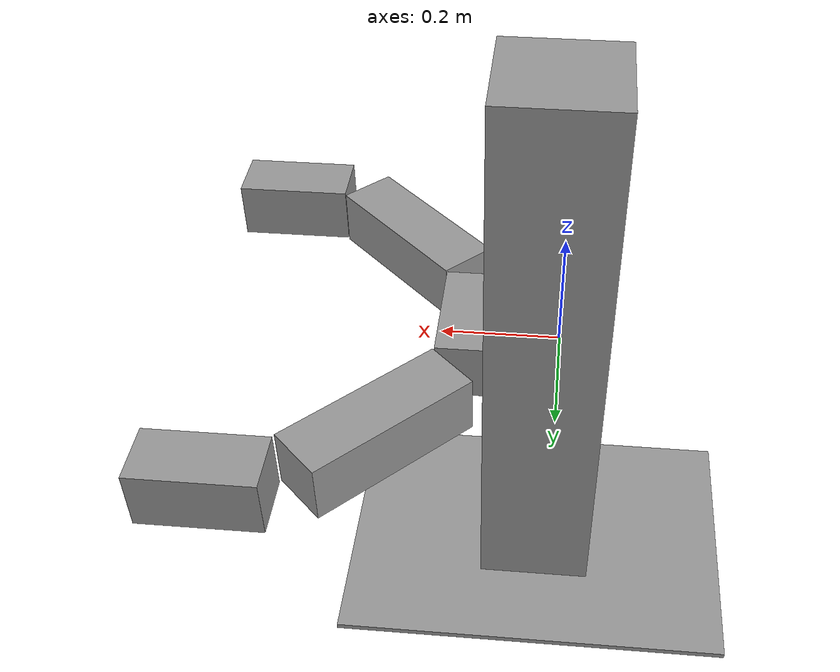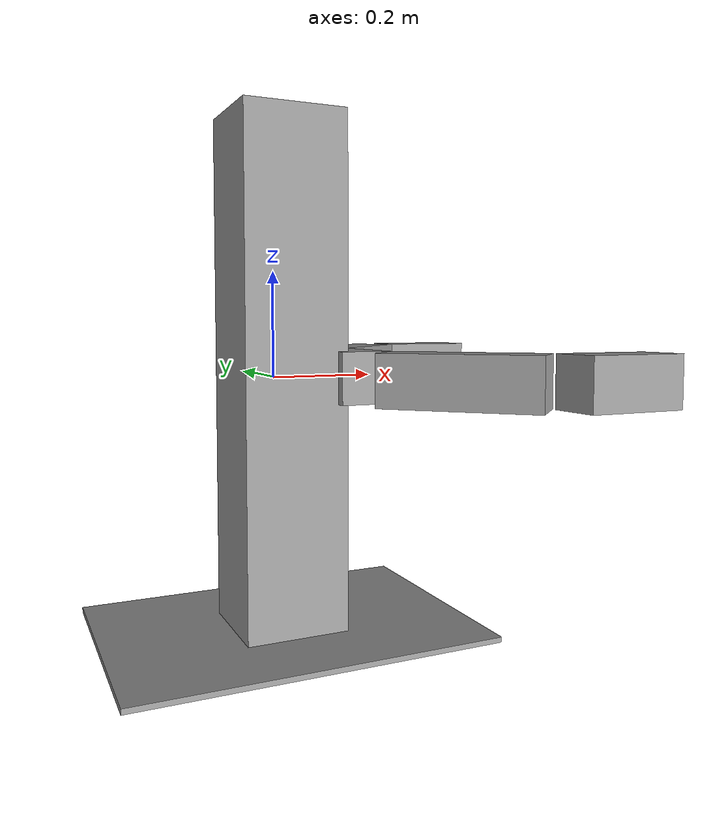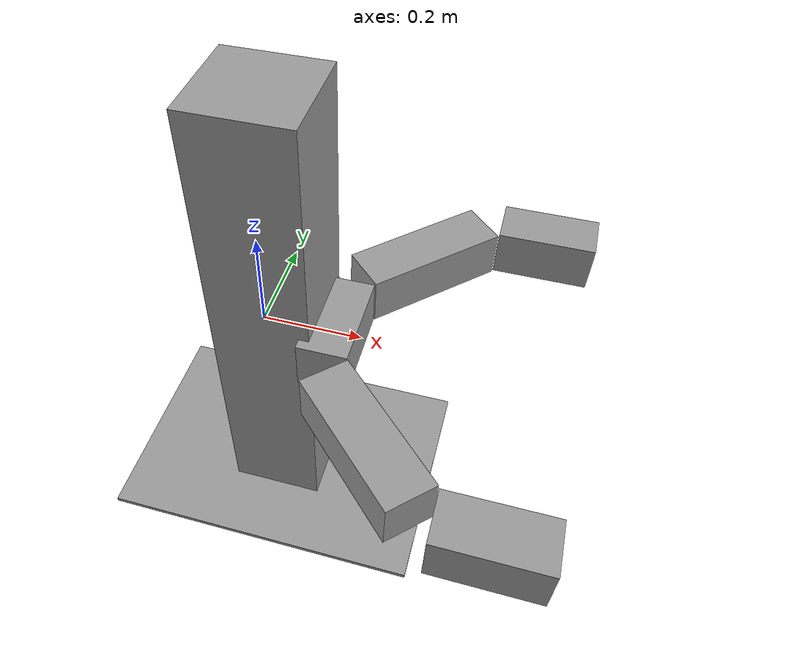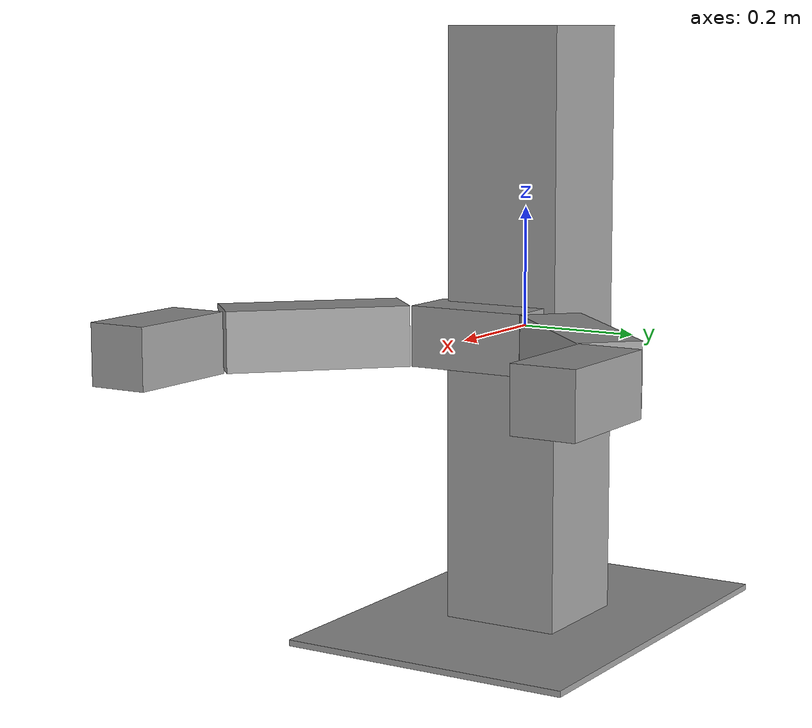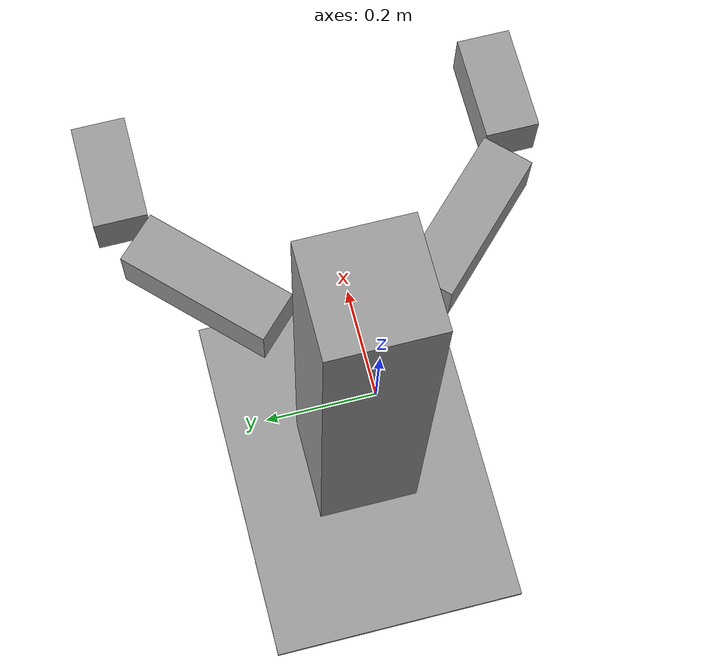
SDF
<?xml version='1.0'?>
<sdf version='1.7'>
  <model name='gripper_base'>
    <link name='riser'>
      <pose>0.02 0.02 0 -2e-06 -1.6e-05 -0.000932</pose>
      <inertial>
        <mass>10</mass>
        <inertia>
          <ixx>0.166667</ixx>
          <ixy>0</ixy>
          <ixz>0</ixz>
          <iyy>0.166667</iyy>
          <iyz>0</iyz>
          <izz>0.166667</izz>
        </inertia>
        <pose>0 0 0 0 -0 0</pose>
      </inertial>
      <self_collide>0</self_collide>
      <kinematic>0</kinematic>
      <enable_wind>0</enable_wind>
      <gravity>1</gravity>
      <visual name='visual'>
        <pose>0 0 0 0 -0 0</pose>
        <geometry>
          <box>
            <size>0.2 0.2 1</size>
          </box>
        </geometry>
        <material>
          <lighting>1</lighting>
          <script>
            <uri>file://media/materials/scripts/gazebo.material</uri>
            <name>Gazebo/Grey</name>
          </script>
          <ambient>0.3 0.3 0.3 1</ambient>
          <diffuse>0.7 0.7 0.7 1</diffuse>
          <specular>0.01 0.01 0.01 1</specular>
          <emissive>0 0 0 1</emissive>
          <shader type='vertex'>
            <normal_map>__default__</normal_map>
          </shader>
        </material>
        <transparency>0</transparency>
        <cast_shadows>1</cast_shadows>
      </visual>
      <collision name='collision'>
        <laser_retro>0</laser_retro>
        <max_contacts>10</max_contacts>
        <pose>0 0 0 0 -0 0</pose>
        <geometry>
          <box>
            <size>0.2 0.2 1</size>
          </box>
        </geometry>
        <surface>
          <friction>
            <ode>
              <mu>1</mu>
              <mu2>1</mu2>
              <fdir1>0 0 0</fdir1>
              <slip1>0</slip1>
              <slip2>0</slip2>
            </ode>
            <torsional>
              <coefficient>1</coefficient>
              <patch_radius>0</patch_radius>
              <surface_radius>0</surface_radius>
              <use_patch_radius>1</use_patch_radius>
              <ode>
                <slip>0</slip>
              </ode>
            </torsional>
          </friction>
          <bounce>
            <restitution_coefficient>0</restitution_coefficient>
            <threshold>1e+06</threshold>
          </bounce>
          <contact>
            <collide_without_contact>0</collide_without_contact>
            <collide_without_contact_bitmask>1</collide_without_contact_bitmask>
            <collide_bitmask>1</collide_bitmask>
            <ode>
              <soft_cfm>0</soft_cfm>
              <soft_erp>0.2</soft_erp>
              <kp>1e+13</kp>
              <kd>1</kd>
              <max_vel>0.01</max_vel>
              <min_depth>0</min_depth>
            </ode>
            <bullet>
              <split_impulse>1</split_impulse>
              <split_impulse_penetration_threshold>-0.01</split_impulse_penetration_threshold>
              <soft_cfm>0</soft_cfm>
              <soft_erp>0.2</soft_erp>
              <kp>1e+13</kp>
              <kd>1</kd>
            </bullet>
          </contact>
        </surface>
      </collision>
    </link>
    <link name='left_finger'>
      <pose>0.27277 0.243512 -0 0 0 -0.7854</pose>
      <inertial>
        <mass>0.1</mass>
        <inertia>
          <ixx>0.166667</ixx>
          <ixy>0</ixy>
          <ixz>0</ixz>
          <iyy>0.166667</iyy>
          <iyz>0</iyz>
          <izz>0.166667</izz>
        </inertia>
        <pose>0 0 0 0 -0 0</pose>
      </inertial>
      <self_collide>0</self_collide>
      <kinematic>0</kinematic>
      <enable_wind>0</enable_wind>
      <visual name='visual'>
        <pose>0 0 0 0 -0 0</pose>
        <geometry>
          <box>
            <size>0.1 0.3 0.1</size>
          </box>
        </geometry>
        <material>
          <lighting>1</lighting>
          <script>
            <uri>file://media/materials/scripts/gazebo.material</uri>
            <name>Gazebo/Grey</name>
          </script>
          <ambient>0.3 0.3 0.3 1</ambient>
          <diffuse>0.7 0.7 0.7 1</diffuse>
          <specular>0.01 0.01 0.01 1</specular>
          <emissive>0 0 0 1</emissive>
          <shader type='vertex'>
            <normal_map>__default__</normal_map>
          </shader>
        </material>
        <transparency>0</transparency>
        <cast_shadows>1</cast_shadows>
      </visual>
      <collision name='collision'>
        <laser_retro>0</laser_retro>
        <max_contacts>10</max_contacts>
        <pose>0 0 0 0 -0 0</pose>
        <geometry>
          <box>
            <size>0.1 0.3 0.1</size>
          </box>
        </geometry>
        <surface>
          <friction>
            <ode>
              <mu>1</mu>
              <mu2>1</mu2>
              <fdir1>0 0 0</fdir1>
              <slip1>0</slip1>
              <slip2>0</slip2>
            </ode>
            <torsional>
              <coefficient>1</coefficient>
              <patch_radius>0</patch_radius>
              <surface_radius>0</surface_radius>
              <use_patch_radius>1</use_patch_radius>
              <ode>
                <slip>0</slip>
              </ode>
            </torsional>
          </friction>
          <bounce>
            <restitution_coefficient>0</restitution_coefficient>
            <threshold>1e+06</threshold>
          </bounce>
          <contact>
            <collide_without_contact>0</collide_without_contact>
            <collide_without_contact_bitmask>1</collide_without_contact_bitmask>
            <collide_bitmask>1</collide_bitmask>
            <ode>
              <soft_cfm>0</soft_cfm>
              <soft_erp>0.2</soft_erp>
              <kp>1e+13</kp>
              <kd>1</kd>
              <max_vel>0.01</max_vel>
              <min_depth>0</min_depth>
            </ode>
            <bullet>
              <split_impulse>1</split_impulse>
              <split_impulse_penetration_threshold>-0.01</split_impulse_penetration_threshold>
              <soft_cfm>0</soft_cfm>
              <soft_erp>0.2</soft_erp>
              <kp>1e+13</kp>
              <kd>1</kd>
            </bullet>
          </contact>
        </surface>
      </collision>
    </link>
    <link name='left_fingertip'>
      <pose>0.516026 0.369208 0 0 0 -1.5707</pose>
      <inertial>
        <mass>0.1</mass>
        <inertia>
          <ixx>0.166667</ixx>
          <ixy>0</ixy>
          <ixz>0</ixz>
          <iyy>0.166667</iyy>
          <iyz>0</iyz>
          <izz>0.166667</izz>
        </inertia>
        <pose>0 0 0 0 -0 0</pose>
      </inertial>
      <self_collide>0</self_collide>
      <kinematic>0</kinematic>
      <enable_wind>0</enable_wind>
      <visual name='visual'>
        <pose>0 0 0 0 -0 0</pose>
        <geometry>
          <box>
            <size>0.1 0.2 0.1</size>
          </box>
        </geometry>
        <material>
          <lighting>1</lighting>
          <script>
            <uri>file://media/materials/scripts/gazebo.material</uri>
            <name>Gazebo/Grey</name>
          </script>
          <ambient>0.3 0.3 0.3 1</ambient>
          <diffuse>0.7 0.7 0.7 1</diffuse>
          <specular>0.01 0.01 0.01 1</specular>
          <emissive>0 0 0 1</emissive>
          <shader type='vertex'>
            <normal_map>__default__</normal_map>
          </shader>
        </material>
        <transparency>0</transparency>
        <cast_shadows>1</cast_shadows>
      </visual>
      <collision name='collision'>
        <laser_retro>0</laser_retro>
        <max_contacts>10</max_contacts>
        <pose>0 0 0 0 -0 0</pose>
        <geometry>
          <box>
            <size>0.1 0.2 0.1</size>
          </box>
        </geometry>
        <surface>
          <friction>
            <ode>
              <mu>1</mu>
              <mu2>1</mu2>
              <fdir1>0 0 0</fdir1>
              <slip1>0</slip1>
              <slip2>0</slip2>
            </ode>
            <torsional>
              <coefficient>1</coefficient>
              <patch_radius>0</patch_radius>
              <surface_radius>0</surface_radius>
              <use_patch_radius>1</use_patch_radius>
              <ode>
                <slip>0</slip>
              </ode>
            </torsional>
          </friction>
          <bounce>
            <restitution_coefficient>0</restitution_coefficient>
            <threshold>1e+06</threshold>
          </bounce>
          <contact>
            <collide_without_contact>0</collide_without_contact>
            <collide_without_contact_bitmask>1</collide_without_contact_bitmask>
            <collide_bitmask>1</collide_bitmask>
            <ode>
              <soft_cfm>0</soft_cfm>
              <soft_erp>0.2</soft_erp>
              <kp>1e+13</kp>
              <kd>1</kd>
              <max_vel>0.01</max_vel>
              <min_depth>0</min_depth>
            </ode>
            <bullet>
              <split_impulse>1</split_impulse>
              <split_impulse_penetration_threshold>-0.01</split_impulse_penetration_threshold>
              <soft_cfm>0</soft_cfm>
              <soft_erp>0.2</soft_erp>
              <kp>1e+13</kp>
              <kd>1</kd>
            </bullet>
          </contact>
        </surface>
      </collision>
    </link>
    <link name='base'>
      <inertial>
        <mass>19</mass>
        <inertia>
          <ixx>0.395992</ixx>
          <ixy>0</ixy>
          <ixz>0</ixz>
          <iyy>0.395992</iyy>
          <iyz>0</iyz>
          <izz>0.791667</izz>
        </inertia>
        <pose>0 0 0 0 -0 0</pose>
      </inertial>
      <pose>0.020008 0.019999 -0.493 -0 -0 -0.000932</pose>
      <gravity>1</gravity>
      <self_collide>0</self_collide>
      <kinematic>0</kinematic>
      <enable_wind>0</enable_wind>
      <visual name='visual'>
        <pose>0 0 0 0 -0 0</pose>
        <geometry>
          <box>
            <size>0.7 0.5 0.01</size>
          </box>
        </geometry>
        <material>
          <lighting>1</lighting>
          <script>
            <uri>file://media/materials/scripts/gazebo.material</uri>
            <name>Gazebo/Grey</name>
          </script>
          <shader type='pixel'>
            <normal_map>__default__</normal_map>
          </shader>
          <ambient>0.3 0.3 0.3 1</ambient>
          <diffuse>0.7 0.7 0.7 1</diffuse>
          <specular>0.01 0.01 0.01 1</specular>
          <emissive>0 0 0 1</emissive>
        </material>
        <transparency>0</transparency>
        <cast_shadows>1</cast_shadows>
      </visual>
      <collision name='collision'>
        <laser_retro>0</laser_retro>
        <max_contacts>10</max_contacts>
        <pose>0 0 0 0 -0 0</pose>
        <geometry>
          <box>
            <size>0.7 0.5 0.01</size>
          </box>
        </geometry>
        <surface>
          <friction>
            <ode>
              <mu>1</mu>
              <mu2>1</mu2>
              <fdir1>0 0 0</fdir1>
              <slip1>0</slip1>
              <slip2>0</slip2>
            </ode>
            <torsional>
              <coefficient>1</coefficient>
              <patch_radius>0</patch_radius>
              <surface_radius>0</surface_radius>
              <use_patch_radius>1</use_patch_radius>
              <ode>
                <slip>0</slip>
              </ode>
            </torsional>
          </friction>
          <bounce>
            <restitution_coefficient>0</restitution_coefficient>
            <threshold>1e+06</threshold>
          </bounce>
          <contact>
            <collide_without_contact>0</collide_without_contact>
            <collide_without_contact_bitmask>1</collide_without_contact_bitmask>
            <collide_bitmask>1</collide_bitmask>
            <ode>
              <soft_cfm>0</soft_cfm>
              <soft_erp>0.2</soft_erp>
              <kp>1e+13</kp>
              <kd>1</kd>
              <max_vel>0.01</max_vel>
              <min_depth>0</min_depth>
            </ode>
            <bullet>
              <split_impulse>1</split_impulse>
              <split_impulse_penetration_threshold>-0.01</split_impulse_penetration_threshold>
              <soft_cfm>0</soft_cfm>
              <soft_erp>0.2</soft_erp>
              <kp>1e+13</kp>
              <kd>1</kd>
            </bullet>
          </contact>
        </surface>
      </collision>
    </link>
    <link name='palm'>
      <pose>0.15 -0 -0 0 -0 0</pose>
      <inertial>
        <mass>0.5</mass>
        <inertia>
          <ixx>0.166667</ixx>
          <ixy>0</ixy>
          <ixz>0</ixz>
          <iyy>0.166667</iyy>
          <iyz>0</iyz>
          <izz>0.166667</izz>
        </inertia>
        <pose>0 0 0 0 -0 0</pose>
      </inertial>
      <self_collide>0</self_collide>
      <kinematic>0</kinematic>
      <enable_wind>0</enable_wind>
      <visual name='visual'>
        <pose>0 0 0 0 -0 0</pose>
        <geometry>
          <box>
            <size>0.1 0.2 0.1</size>
          </box>
        </geometry>
        <material>
          <lighting>1</lighting>
          <script>
            <uri>file://media/materials/scripts/gazebo.material</uri>
            <name>Gazebo/Grey</name>
          </script>
          <ambient>0.3 0.3 0.3 1</ambient>
          <diffuse>0.7 0.7 0.7 1</diffuse>
          <specular>0.01 0.01 0.01 1</specular>
          <emissive>0 0 0 1</emissive>
          <shader type='vertex'>
            <normal_map>__default__</normal_map>
          </shader>
        </material>
        <transparency>0</transparency>
        <cast_shadows>1</cast_shadows>
      </visual>
      <collision name='collision'>
        <laser_retro>0</laser_retro>
        <max_contacts>10</max_contacts>
        <pose>0 0 0 0 -0 0</pose>
        <geometry>
          <box>
            <size>0.1 0.2 0.1</size>
          </box>
        </geometry>
        <surface>
          <friction>
            <ode>
              <mu>1</mu>
              <mu2>1</mu2>
              <fdir1>0 0 0</fdir1>
              <slip1>0</slip1>
              <slip2>0</slip2>
            </ode>
            <torsional>
              <coefficient>1</coefficient>
              <patch_radius>0</patch_radius>
              <surface_radius>0</surface_radius>
              <use_patch_radius>1</use_patch_radius>
              <ode>
                <slip>0</slip>
              </ode>
            </torsional>
          </friction>
          <bounce>
            <restitution_coefficient>0</restitution_coefficient>
            <threshold>1e+06</threshold>
          </bounce>
          <contact>
            <collide_without_contact>0</collide_without_contact>
            <collide_without_contact_bitmask>1</collide_without_contact_bitmask>
            <collide_bitmask>1</collide_bitmask>
            <ode>
              <soft_cfm>0</soft_cfm>
              <soft_erp>0.2</soft_erp>
              <kp>1e+13</kp>
              <kd>1</kd>
              <max_vel>0.01</max_vel>
              <min_depth>0</min_depth>
            </ode>
            <bullet>
              <split_impulse>1</split_impulse>
              <split_impulse_penetration_threshold>-0.01</split_impulse_penetration_threshold>
              <soft_cfm>0</soft_cfm>
              <soft_erp>0.2</soft_erp>
              <kp>1e+13</kp>
              <kd>1</kd>
            </bullet>
          </contact>
        </surface>
      </collision>
    </link>
    <link name='right_finger'>
      <pose>0.27277 -0.243512 0 0 -0 0.7854</pose>
      <inertial>
        <mass>0.1</mass>
        <inertia>
          <ixx>0.166667</ixx>
          <ixy>0</ixy>
          <ixz>0</ixz>
          <iyy>0.166667</iyy>
          <iyz>0</iyz>
          <izz>0.166667</izz>
        </inertia>
        <pose>0 0 0 0 -0 0</pose>
      </inertial>
      <self_collide>0</self_collide>
      <kinematic>0</kinematic>
      <enable_wind>0</enable_wind>
      <visual name='visual'>
        <pose>0 0 0 0 -0 0</pose>
        <geometry>
          <box>
            <size>0.1 0.3 0.1</size>
          </box>
        </geometry>
        <material>
          <lighting>1</lighting>
          <script>
            <uri>file://media/materials/scripts/gazebo.material</uri>
            <name>Gazebo/Grey</name>
          </script>
          <ambient>0.3 0.3 0.3 1</ambient>
          <diffuse>0.7 0.7 0.7 1</diffuse>
          <specular>0.01 0.01 0.01 1</specular>
          <emissive>0 0 0 1</emissive>
          <shader type='vertex'>
            <normal_map>__default__</normal_map>
          </shader>
        </material>
        <transparency>0</transparency>
        <cast_shadows>1</cast_shadows>
      </visual>
      <collision name='collision'>
        <laser_retro>0</laser_retro>
        <max_contacts>10</max_contacts>
        <pose>0 0 0 0 -0 0</pose>
        <geometry>
          <box>
            <size>0.1 0.3 0.1</size>
          </box>
        </geometry>
        <surface>
          <friction>
            <ode>
              <mu>1</mu>
              <mu2>1</mu2>
              <fdir1>0 0 0</fdir1>
              <slip1>0</slip1>
              <slip2>0</slip2>
            </ode>
            <torsional>
              <coefficient>1</coefficient>
              <patch_radius>0</patch_radius>
              <surface_radius>0</surface_radius>
              <use_patch_radius>1</use_patch_radius>
              <ode>
                <slip>0</slip>
              </ode>
            </torsional>
          </friction>
          <bounce>
            <restitution_coefficient>0</restitution_coefficient>
            <threshold>1e+06</threshold>
          </bounce>
          <contact>
            <collide_without_contact>0</collide_without_contact>
            <collide_without_contact_bitmask>1</collide_without_contact_bitmask>
            <collide_bitmask>1</collide_bitmask>
            <ode>
              <soft_cfm>0</soft_cfm>
              <soft_erp>0.2</soft_erp>
              <kp>1e+13</kp>
              <kd>1</kd>
              <max_vel>0.01</max_vel>
              <min_depth>0</min_depth>
            </ode>
            <bullet>
              <split_impulse>1</split_impulse>
              <split_impulse_penetration_threshold>-0.01</split_impulse_penetration_threshold>
              <soft_cfm>0</soft_cfm>
              <soft_erp>0.2</soft_erp>
              <kp>1e+13</kp>
              <kd>1</kd>
            </bullet>
          </contact>
        </surface>
      </collision>
    </link>
    <link name='right_fingertip'>
      <pose>0.516026 -0.369208 -0 0 -0 1.5707</pose>
      <inertial>
        <mass>0.1</mass>
        <inertia>
          <ixx>0.166667</ixx>
          <ixy>0</ixy>
          <ixz>0</ixz>
          <iyy>0.166667</iyy>
          <iyz>0</iyz>
          <izz>0.166667</izz>
        </inertia>
        <pose>0 0 0 0 -0 0</pose>
      </inertial>
      <self_collide>0</self_collide>
      <kinematic>0</kinematic>
      <enable_wind>0</enable_wind>
      <visual name='visual'>
        <pose>0 0 0 0 -0 0</pose>
        <geometry>
          <box>
            <size>0.1 0.2 0.1</size>
          </box>
        </geometry>
        <material>
          <lighting>1</lighting>
          <script>
            <uri>file://media/materials/scripts/gazebo.material</uri>
            <name>Gazebo/Grey</name>
          </script>
          <ambient>0.3 0.3 0.3 1</ambient>
          <diffuse>0.7 0.7 0.7 1</diffuse>
          <specular>0.01 0.01 0.01 1</specular>
          <emissive>0 0 0 1</emissive>
          <shader type='vertex'>
            <normal_map>__default__</normal_map>
          </shader>
        </material>
        <transparency>0</transparency>
        <cast_shadows>1</cast_shadows>
      </visual>
      <collision name='collision'>
        <laser_retro>0</laser_retro>
        <max_contacts>10</max_contacts>
        <pose>0 0 0 0 -0 0</pose>
        <geometry>
          <box>
            <size>0.1 0.2 0.1</size>
          </box>
        </geometry>
        <surface>
          <friction>
            <ode>
              <mu>1</mu>
              <mu2>1</mu2>
              <fdir1>0 0 0</fdir1>
              <slip1>0</slip1>
              <slip2>0</slip2>
            </ode>
            <torsional>
              <coefficient>1</coefficient>
              <patch_radius>0</patch_radius>
              <surface_radius>0</surface_radius>
              <use_patch_radius>1</use_patch_radius>
              <ode>
                <slip>0</slip>
              </ode>
            </torsional>
          </friction>
          <bounce>
            <restitution_coefficient>0</restitution_coefficient>
            <threshold>1e+06</threshold>
          </bounce>
          <contact>
            <collide_without_contact>0</collide_without_contact>
            <collide_without_contact_bitmask>1</collide_without_contact_bitmask>
            <collide_bitmask>1</collide_bitmask>
            <ode>
              <soft_cfm>0</soft_cfm>
              <soft_erp>0.2</soft_erp>
              <kp>1e+13</kp>
              <kd>1</kd>
              <max_vel>0.01</max_vel>
              <min_depth>0</min_depth>
            </ode>
            <bullet>
              <split_impulse>1</split_impulse>
              <split_impulse_penetration_threshold>-0.01</split_impulse_penetration_threshold>
              <soft_cfm>0</soft_cfm>
              <soft_erp>0.2</soft_erp>
              <kp>1e+13</kp>
              <kd>1</kd>
            </bullet>
          </contact>
        </surface>
      </collision>
    </link>
    <joint name='left_finger_joint' type='revolute'>
      <parent>palm</parent>
      <child>left_finger</child>
      <pose>0.05 -0.15 0 0 -0 0</pose>
      <axis>
        <xyz>0 0 -1</xyz>
        <limit>
          <lower>-0.4</lower>
          <upper>0.4</upper>
          <effort>-1</effort>
          <velocity>-1</velocity>
        </limit>
        <dynamics>
          <spring_reference>0</spring_reference>
          <spring_stiffness>0</spring_stiffness>
          <damping>0</damping>
          <friction>0</friction>
        </dynamics>
      </axis>
      <physics>
        <ode>
          <limit>
            <cfm>0</cfm>
            <erp>0.2</erp>
          </limit>
          <suspension>
            <cfm>0</cfm>
            <erp>0.2</erp>
          </suspension>
        </ode>
      </physics>
    </joint>
    <joint name='left_tip_joint' type='revolute'>
      <parent>left_finger</parent>
      <child>left_fingertip</child>
      <pose>0.05 -0.1 0 0 -0 0</pose>
      <axis>
        <xyz>0 0 -1</xyz>
        <limit>
          <lower>-0.4</lower>
          <upper>0.4</upper>
          <effort>-1</effort>
          <velocity>-1</velocity>
        </limit>
        <dynamics>
          <spring_reference>0</spring_reference>
          <spring_stiffness>0</spring_stiffness>
          <damping>0</damping>
          <friction>0</friction>
        </dynamics>
      </axis>
      <physics>
        <ode>
          <limit>
            <cfm>0</cfm>
            <erp>0.2</erp>
          </limit>
          <suspension>
            <cfm>0</cfm>
            <erp>0.2</erp>
          </suspension>
        </ode>
      </physics>
    </joint>
    <joint name='base_JOINT_0' type='fixed'>
      <parent>base</parent>
      <child>riser</child>
      <pose>0 0 0 0 -0 0</pose>
      <physics>
        <ode>
          <limit>
            <cfm>0</cfm>
            <erp>0.2</erp>
          </limit>
          <suspension>
            <cfm>0</cfm>
            <erp>0.2</erp>
          </suspension>
        </ode>
      </physics>
    </joint>
    <joint name='right_finger_joint' type='revolute'>
      <parent>palm</parent>
      <child>right_finger</child>
      <pose>0.05 0.15 0 0 -0 0</pose>
      <axis>
        <xyz>0 0 1</xyz>
        <limit>
          <lower>-0.4</lower>
          <upper>0.4</upper>
          <effort>-1</effort>
          <velocity>-1</velocity>
        </limit>
        <dynamics>
          <spring_reference>0</spring_reference>
          <spring_stiffness>0</spring_stiffness>
          <damping>0</damping>
          <friction>0</friction>
        </dynamics>
      </axis>
      <physics>
        <ode>
          <limit>
            <cfm>0</cfm>
            <erp>0.2</erp>
          </limit>
          <suspension>
            <cfm>0</cfm>
            <erp>0.2</erp>
          </suspension>
        </ode>
      </physics>
    </joint>
    <joint name='right_tip_joint' type='revolute'>
      <parent>right_finger</parent>
      <child>right_fingertip</child>
      <pose>0.05 0.1 0 0 -0 0</pose>
      <axis>
        <xyz>0 0 1</xyz>
        <limit>
          <lower>-0.4</lower>
          <upper>0.4</upper>
          <effort>-1</effort>
          <velocity>-1</velocity>
        </limit>
        <dynamics>
          <spring_reference>0</spring_reference>
          <spring_stiffness>0</spring_stiffness>
          <damping>0</damping>
          <friction>0</friction>
        </dynamics>
      </axis>
      <physics>
        <ode>
          <limit>
            <cfm>0</cfm>
            <erp>0.2</erp>
          </limit>
          <suspension>
            <cfm>0</cfm>
            <erp>0.2</erp>
          </suspension>
        </ode>
      </physics>
    </joint>
    <joint name='riser_joint' type='prismatic'>
      <parent>riser</parent>
      <child>palm</child>
      <pose>0 0 0 0 -0 0</pose>
      <axis>
        <xyz>0 0 1</xyz>
        <limit>
          <lower>-0.4</lower>
          <upper>0.4</upper>
          <effort>-1</effort>
          <velocity>-1</velocity>
        </limit>
        <dynamics>
          <spring_reference>0</spring_reference>
          <spring_stiffness>0</spring_stiffness>
          <damping>0</damping>
          <friction>0</friction>
        </dynamics>
      </axis>
      <physics>
        <ode>
          <limit>
            <cfm>0</cfm>
            <erp>0.2</erp>
          </limit>
          <suspension>
            <cfm>0</cfm>
            <erp>0.2</erp>
          </suspension>
        </ode>
      </physics>
    </joint>
    <static>0</static>
    <allow_auto_disable>1</allow_auto_disable>
    <plugin name='gripper' filename='libgripper.so'>
      <riser_position>0</riser_position>
      <finger_position>0</finger_position>
      <tip_position>0</tip_position>
    </plugin>
  </model>
</sdf>
